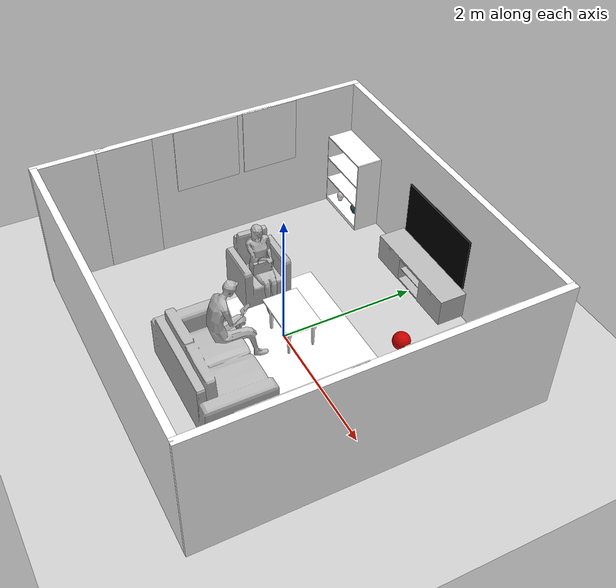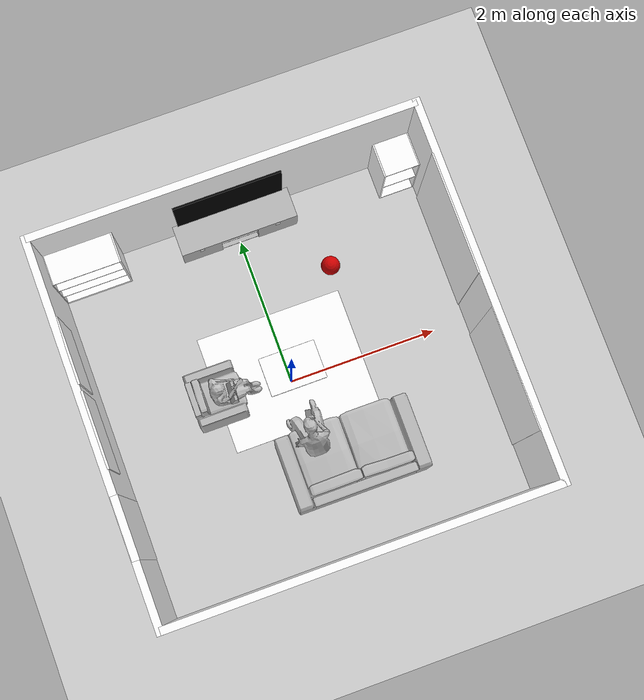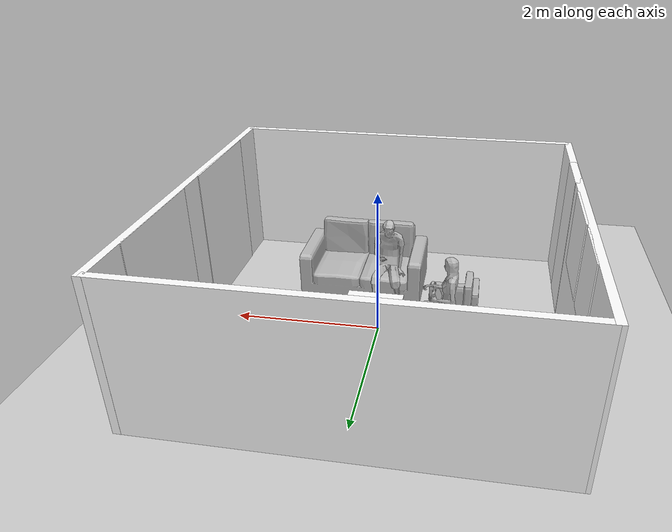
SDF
<sdf version="1.10">
 <world name="default">
  <scene>
   <shadows>false</shadows>
   <ambient>0.400000006 0.400000006 0.400000006 1</ambient>
   <background>0.699999988 0.699999988 0.699999988 1</background>
  </scene>
  <physics type="ode">
   <real_time_update_rate>1000</real_time_update_rate>
   <max_step_size>0.001</max_step_size>
   <real_time_factor>1</real_time_factor>
   <ode>
    <solver>
     <type>quick</type>
     <iters>150</iters>
     <precon_iters>0</precon_iters>
     <sor>1.3999999999999999</sor>
     <use_dynamic_moi_rescaling>true</use_dynamic_moi_rescaling>
    </solver>
    <constraints>
     <cfm>1.0000000000000001e-05</cfm>
     <erp>0.20000000000000001</erp>
     <contact_max_correcting_vel>2000</contact_max_correcting_vel>
     <contact_surface_layer>0.01</contact_surface_layer>
    </constraints>
   </ode>
  </physics>
  <plugin name="gz::sim::systems::Physics" filename="gz-sim-physics-system"/>
  <plugin name="gz::sim::systems::UserCommands" filename="gz-sim-user-commands-system"/>
  <plugin name="gz::sim::systems::SceneBroadcaster" filename="gz-sim-scene-broadcaster-system"/>
  <plugin name="gz::sim::systems::Sensors" filename="gz-sim-sensors-system">
   <render_engine>ogre2</render_engine>
  </plugin>
  <plugin name="gz::sim::systems::Imu" filename="gz-sim-imu-system"/>
  <plugin name="gz::sim::systems::Contact" filename="gz-sim-contact-system"/>
  <gravity>0 0 -9.8000000000000007</gravity>
  <magnetic_field>5.5644999999999998e-06 2.2875799999999999e-05 -4.2388400000000002e-05</magnetic_field>
  <atmosphere type="adiabatic"/>
  <include><uri>model://ground plane</uri><name>ground_plane</name></include>
  <model name="makerspet_poster">
   <static>true</static>
   <include><uri>model://makerspet_poster</uri></include>
   <pose>-2.45 1 1.5 0 -0 0</pose>
  </model>
  <model name="kaiaai_poster">
   <static>true</static>
   <include><uri>model://kaiaai_poster</uri></include>
   <pose>-2.45 0 1.5 0 -0 0</pose>
  </model>
  <model name="wall_0">
   <static>true</static>
   <include><uri>model://room_wall_2x5m</uri></include>
   <pose>-2.5 0 1 0 -0 0</pose>
  </model>
  <model name="wall_1">
   <static>true</static>
   <include><uri>model://room_wall_2x5m</uri></include>
   <pose>2.5 0 1 0 -0 0</pose>
  </model>
  <model name="wall_2">
   <static>true</static>
   <include><uri>model://room_wall_2x5m</uri></include>
   <pose>0 2.45 1 0 -0 1.5707</pose>
  </model>
  <model name="wall_3">
   <static>true</static>
   <include><uri>model://room_wall_2x5m</uri></include>
   <pose>0 -2.45 1 0 -0 1.5707</pose>
  </model>
  <light name="sun" type="directional">
   <cast_shadows>false</cast_shadows>
   <pose>0 0 10 0 -0 0</pose>
   <diffuse>0.8 0.8 0.8 1</diffuse>
   <specular>0.2 0.2 0.2 1</specular>
   <intensity>3</intensity>
   <attenuation>
    <range>1000</range>
    <constant>0.9</constant>
    <linear>0.01</linear>
    <quadratic>0.001</quadratic>
   </attenuation>
   <direction>-0.5 0.1 -0.9</direction>
   <spot><inner_angle>0</inner_angle><outer_angle>0</outer_angle><falloff>0</falloff></spot>
  </light>
  <model name="door_08x2m">
   <static>true</static>
   <include><uri>model://door_08x2m</uri></include>
   <pose>-2.495 -1.2 1 0 -0 0</pose>
  </model>
  <model name="cabinet">
   <static>true</static>
   <pose>2.21 2.17 0 0 -0 1.5707</pose>
   <include><uri>model://Cabinet</uri></include>
  </model>
  <model name="Bookshelf">
   <static>true</static>
   <pose>-2 2.4 0 0 -0 0</pose>
   <include><uri>model://Bookshelf</uri></include>
  </model>
  <model name="Cat Figurines">
   <static>true</static>
   <pose>2.21368 2.13863 0.019163 -0.003852 -0.005692 -1e-06</pose>
   <include><uri>model://cat_figurines</uri></include>
  </model>
  <model name="FemaleVisitorSit">
   <static>true</static>
   <pose>-0.91 0.09 0 0 -0 1.5707</pose>
   <include><uri>model://FemaleVisitorSit</uri></include>
  </model>
  <model name="MaleVisitorSit">
   <static>true</static>
   <pose>0 -0.91 0 0 -0 3.1415</pose>
   <include><uri>model://MaleVisitorSit</uri></include>
  </model>
  <model name="MiniSofa">
   <static>true</static>
   <pose>-1 0.1 0 0 -0 3.1415</pose>
   <include><uri>model://MiniSofa</uri></include>
  </model>
  <model name="decor_vase">
   <static>true</static>
   <pose>-1.87443 2.2 0.059172 0 -0 0</pose>
   <include><uri>model://decor_vase</uri></include>
  </model>
  <model name="Sofa">
   <static>true</static>
   <pose>0.394 -1.2 0 0 -0 1.5707</pose>
   <include><uri>model://Sofa</uri></include>
  </model>
  <model name="decor_vase_tall">
   <static>true</static>
   <pose>-2.24886 2.15 0.059889 0 -0 0</pose>
   <include><uri>model://decor_vase_tall</uri></include>
  </model>
  <model name="TVStand">
   <static>true</static>
   <pose>0 2.2 0 0 -0 0</pose>
   <include><uri>model://TVStand</uri></include>
  </model>
  <model name="red_ball_10in">
   <static>false</static>
   <pose>1 1.25 0.127 0 -0 0</pose>
   <include><uri>model://red_ball_10in</uri></include>
  </model>
  <model name="rug_ivory_2m">
   <static>true</static>
   <pose>0 0.15 0 0 -0 1.5707</pose>
   <include><uri>model://rug_ivory_2m</uri></include>
  </model>
  <model name="TableMarble">
   <static>true</static>
   <pose>0 0.1 0 0 -0 1.5708</pose>
   <include><uri>model://TableMarble</uri></include>
  </model>
  <model name="tv_65in_emissive">
   <static>true</static>
   <pose>0 2.4 0.9 0 -0 1.5707</pose>
   <include><uri>model://tv_65in_emissive</uri></include>
  </model>
  <model name="window_curtains">
   <static>true</static>
   <pose>2.45 1 1 0 -0 0</pose>
   <include><uri>model://window_curtains</uri></include>
  </model>
  <model name="window_curtains_0">
   <static>true</static>
   <pose>2.45 -1 1 0 -0 0</pose>
   <include><uri>model://window_curtains</uri></include>
  </model>
 </world>
</sdf>
